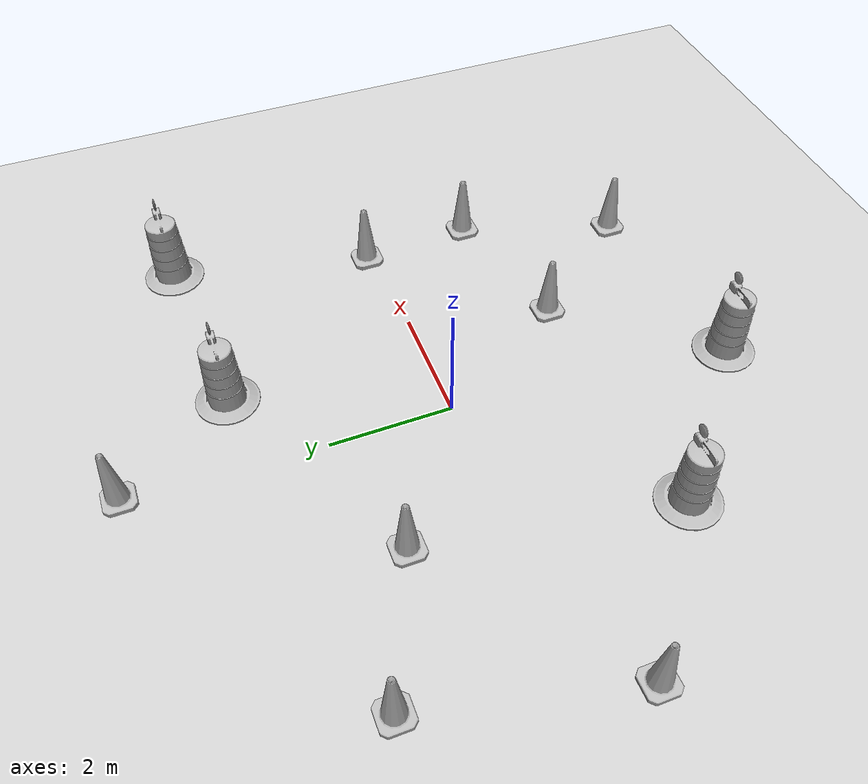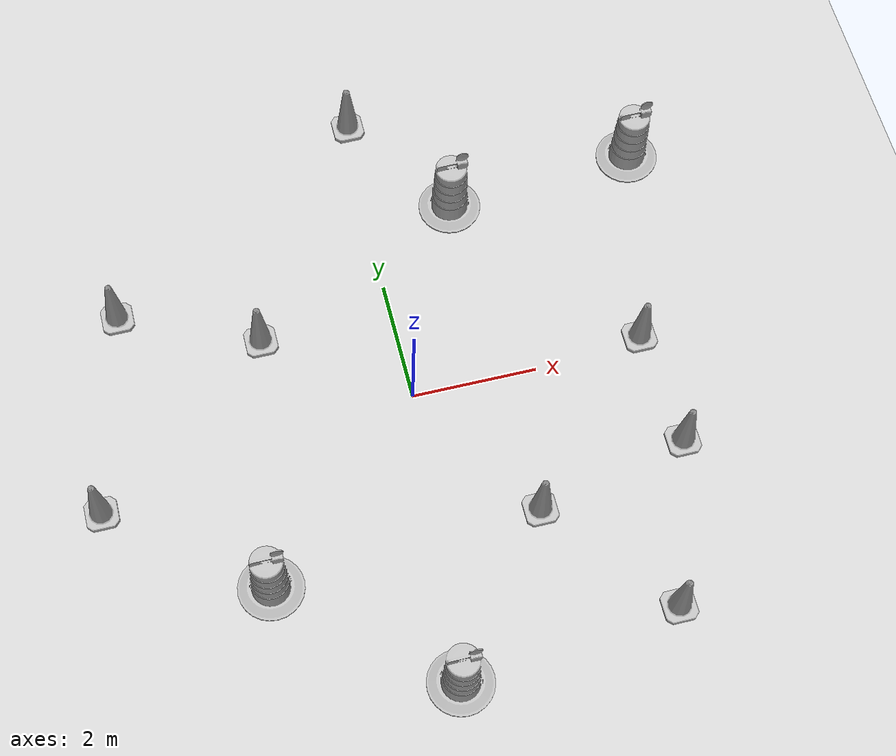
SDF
<sdf version="1.7">
 <world name="default">
  <light name="sun" type="directional">
   <pose>0 0 10 0 -0 0</pose>
   <diffuse>0.8 0.8 0.8 1</diffuse>
   <specular>0.2 0.2 0.2 1</specular>
   <attenuation>
    <range>1000</range>
    <constant>0.9</constant>
    <linear>0.01</linear>
    <quadratic>0.001</quadratic>
   </attenuation>
   <direction>-0.5 0.1 -0.9</direction>
   <spot><inner_angle>0</inner_angle><outer_angle>0</outer_angle><falloff>0</falloff></spot>
  </light>
  <model name="ground_plane">
   <static>1</static>
   <link name="link">
    <collision name="collision">
     <geometry><plane><normal>0 0 1</normal><size>100 100</size></plane></geometry>
     <surface>
      <contact><collide_bitmask>65535</collide_bitmask></contact>
      <friction><ode><mu>100</mu><mu2>50</mu2></ode></friction>
     </surface>
    </collision>
    <visual name="visual">
     <cast_shadows>0</cast_shadows>
     <geometry><plane><normal>0 0 1</normal><size>100 100</size></plane></geometry>
     <material>
      <script><uri>file://media/materials/scripts/gazebo.material</uri><name>Gazebo/Grey</name></script>
     </material>
    </visual>
   </link>
  </model>
  <gravity>0 0 -9.8</gravity>
  <magnetic_field>6e-06 2.3e-05 -4.2e-05</magnetic_field>
  <atmosphere type="adiabatic"/>
  <physics type="ode">
   <max_step_size>0.001</max_step_size>
   <real_time_factor>1</real_time_factor>
   <real_time_update_rate>1000</real_time_update_rate>
  </physics>
  <scene><ambient>0.4 0.4 0.4 1</ambient><background>0.7 0.7 0.7 1</background><shadows>1</shadows></scene>
  <audio><device>default</device></audio>
  <spherical_coordinates>
   <surface_model>EARTH_WGS84</surface_model>
   <latitude_deg>0</latitude_deg>
   <longitude_deg>0</longitude_deg>
   <elevation>0</elevation>
   <heading_deg>0</heading_deg>
  </spherical_coordinates>
  <model name="Construction Cone">
   <link name="link">
    <collision name="collision">
     <geometry>
      <mesh><scale>10 10 10</scale><uri>model://construction_cone/meshes/construction_cone.dae</uri></mesh>
     </geometry>
    </collision>
    <visual name="visual">
     <geometry>
      <mesh><scale>10 10 10</scale><uri>model://construction_cone/meshes/construction_cone.dae</uri></mesh>
     </geometry>
    </visual>
    <inertial>
     <inertia><ixx>1</ixx><ixy>0</ixy><ixz>0</ixz><iyy>1</iyy><iyz>0</iyz><izz>1</izz></inertia>
     <mass>1</mass>
    </inertial>
   </link>
   <pose>1.42634 -2.30777 -0 0 -0 0</pose>
  </model>
  <model name="Construction Cone_0">
   <link name="link">
    <collision name="collision">
     <geometry>
      <mesh><scale>10 10 10</scale><uri>model://construction_cone/meshes/construction_cone.dae</uri></mesh>
     </geometry>
    </collision>
    <visual name="visual">
     <geometry>
      <mesh><scale>10 10 10</scale><uri>model://construction_cone/meshes/construction_cone.dae</uri></mesh>
     </geometry>
    </visual>
    <inertial>
     <inertia><ixx>1</ixx><ixy>0</ixy><ixz>0</ixz><iyy>1</iyy><iyz>0</iyz><izz>1</izz></inertia>
     <mass>1</mass>
    </inertial>
   </link>
   <pose>-2.13099 1.50214 -1e-05 -1e-06 0 0</pose>
  </model>
  <model name="Construction Barrel">
   <link name="link">
    <inertial>
     <pose>0 0 0.4 0 -0 0</pose>
     <mass>500</mass>
     <inertia><ixx>51.2096</ixx><iyy>51.2096</iyy><izz>25</izz><ixy>0</ixy><ixz>0</ixz><iyz>0</iyz></inertia>
    </inertial>
    <collision name="collision">
     <geometry><mesh><uri>model://construction_barrel/meshes/construction_barrel.dae</uri></mesh></geometry>
    </collision>
    <visual name="visual">
     <geometry><mesh><uri>model://construction_barrel/meshes/construction_barrel.dae</uri></mesh></geometry>
    </visual>
   </link>
   <pose>-2.82427 -2.56333 -2e-06 8e-06 -4e-06 -1.7e-05</pose>
  </model>
  <model name="Construction Barrel_0">
   <link name="link">
    <inertial>
     <pose>0 0 0.4 0 -0 0</pose>
     <mass>500</mass>
     <inertia><ixx>51.2096</ixx><iyy>51.2096</iyy><izz>25</izz><ixy>0</ixy><ixz>0</ixz><iyz>0</iyz></inertia>
    </inertial>
    <collision name="collision">
     <geometry><mesh><uri>model://construction_barrel/meshes/construction_barrel.dae</uri></mesh></geometry>
    </collision>
    <visual name="visual">
     <geometry><mesh><uri>model://construction_barrel/meshes/construction_barrel.dae</uri></mesh></geometry>
    </visual>
   </link>
   <pose>1.42149 3.23194 -1e-06 3e-06 7e-06 -1.5e-05</pose>
  </model>
  <model name="Construction Cone_1">
   <link name="link">
    <collision name="collision">
     <geometry>
      <mesh><scale>10 10 10</scale><uri>model://construction_cone/meshes/construction_cone.dae</uri></mesh>
     </geometry>
    </collision>
    <visual name="visual">
     <geometry>
      <mesh><scale>10 10 10</scale><uri>model://construction_cone/meshes/construction_cone.dae</uri></mesh>
     </geometry>
    </visual>
    <inertial>
     <inertia><ixx>1</ixx><ixy>0</ixy><ixz>0</ixz><iyy>1</iyy><iyz>0</iyz><izz>1</izz></inertia>
     <mass>1</mass>
    </inertial>
   </link>
   <pose>3.76512 0.157296 -0 0 -0 0</pose>
  </model>
  <model name="Construction Barrel_1">
   <link name="link">
    <inertial>
     <pose>0 0 0.4 0 -0 0</pose>
     <mass>500</mass>
     <inertia><ixx>51.2096</ixx><iyy>51.2096</iyy><izz>25</izz><ixy>0</ixy><ixz>0</ixz><iyz>0</iyz></inertia>
    </inertial>
    <collision name="collision">
     <geometry><mesh><uri>model://construction_barrel/meshes/construction_barrel.dae</uri></mesh></geometry>
    </collision>
    <visual name="visual">
     <geometry><mesh><uri>model://construction_barrel/meshes/construction_barrel.dae</uri></mesh></geometry>
    </visual>
   </link>
   <pose>-0.434563 -4.63107 -0 1e-06 -1e-06 -1.2e-05</pose>
  </model>
  <model name="Construction Cone_2">
   <link name="link">
    <collision name="collision">
     <geometry>
      <mesh><scale>10 10 10</scale><uri>model://construction_cone/meshes/construction_cone.dae</uri></mesh>
     </geometry>
    </collision>
    <visual name="visual">
     <geometry>
      <mesh><scale>10 10 10</scale><uri>model://construction_cone/meshes/construction_cone.dae</uri></mesh>
     </geometry>
    </visual>
    <inertial>
     <inertia><ixx>1</ixx><ixy>0</ixy><ixz>0</ixz><iyy>1</iyy><iyz>0</iyz><izz>1</izz></inertia>
     <mass>1</mass>
    </inertial>
   </link>
   <pose>0.127589 5.11993 -6e-06 -4e-06 1e-06 0</pose>
  </model>
  <model name="Construction Cone_3">
   <link name="link">
    <collision name="collision">
     <geometry>
      <mesh><scale>10 10 10</scale><uri>model://construction_cone/meshes/construction_cone.dae</uri></mesh>
     </geometry>
    </collision>
    <visual name="visual">
     <geometry>
      <mesh><scale>10 10 10</scale><uri>model://construction_cone/meshes/construction_cone.dae</uri></mesh>
     </geometry>
    </visual>
    <inertial>
     <inertia><ixx>1</ixx><ixy>0</ixy><ixz>0</ixz><iyy>1</iyy><iyz>0</iyz><izz>1</izz></inertia>
     <mass>1</mass>
    </inertial>
   </link>
   <pose>3.01264 -4.27792 -3e-06 -3e-06 -1e-06 -0</pose>
  </model>
  <model name="Construction Cone_4">
   <link name="link">
    <collision name="collision">
     <geometry>
      <mesh><scale>10 10 10</scale><uri>model://construction_cone/meshes/construction_cone.dae</uri></mesh>
     </geometry>
    </collision>
    <visual name="visual">
     <geometry>
      <mesh><scale>10 10 10</scale><uri>model://construction_cone/meshes/construction_cone.dae</uri></mesh>
     </geometry>
    </visual>
    <inertial>
     <inertia><ixx>1</ixx><ixy>0</ixy><ixz>0</ixz><iyy>1</iyy><iyz>0</iyz><izz>1</izz></inertia>
     <mass>1</mass>
    </inertial>
   </link>
   <pose>3.88757 -1.72719 -0 0 -0 0</pose>
  </model>
  <model name="Construction Cone_5">
   <link name="link">
    <collision name="collision">
     <geometry>
      <mesh><scale>10 10 10</scale><uri>model://construction_cone/meshes/construction_cone.dae</uri></mesh>
     </geometry>
    </collision>
    <visual name="visual">
     <geometry>
      <mesh><scale>10 10 10</scale><uri>model://construction_cone/meshes/construction_cone.dae</uri></mesh>
     </geometry>
    </visual>
    <inertial>
     <inertia><ixx>1</ixx><ixy>0</ixy><ixz>0</ixz><iyy>1</iyy><iyz>0</iyz><izz>1</izz></inertia>
     <mass>1</mass>
    </inertial>
   </link>
   <pose>-5.08611 -0.806017 -1e-05 -1e-06 0 0</pose>
  </model>
  <model name="Construction Barrel_2">
   <link name="link">
    <inertial>
     <pose>0 0 0.4 0 -0 0</pose>
     <mass>500</mass>
     <inertia><ixx>51.2096</ixx><iyy>51.2096</iyy><izz>25</izz><ixy>0</ixy><ixz>0</ixz><iyz>0</iyz></inertia>
    </inertial>
    <collision name="collision">
     <geometry><mesh><uri>model://construction_barrel/meshes/construction_barrel.dae</uri></mesh></geometry>
    </collision>
    <visual name="visual">
     <geometry><mesh><uri>model://construction_barrel/meshes/construction_barrel.dae</uri></mesh></geometry>
    </visual>
   </link>
   <pose>4.55704 3.47157 0 0 0 -3e-06</pose>
  </model>
  <model name="Construction Cone_6">
   <link name="link">
    <collision name="collision">
     <geometry>
      <mesh><scale>10 10 10</scale><uri>model://construction_cone/meshes/construction_cone.dae</uri></mesh>
     </geometry>
    </collision>
    <visual name="visual">
     <geometry>
      <mesh><scale>10 10 10</scale><uri>model://construction_cone/meshes/construction_cone.dae</uri></mesh>
     </geometry>
    </visual>
    <inertial>
     <inertia><ixx>1</ixx><ixy>0</ixy><ixz>0</ixz><iyy>1</iyy><iyz>0</iyz><izz>1</izz></inertia>
     <mass>1</mass>
    </inertial>
   </link>
   <pose>-4.28595 2.443 -0 0 -1e-06 0</pose>
  </model>
 </world>
</sdf>
